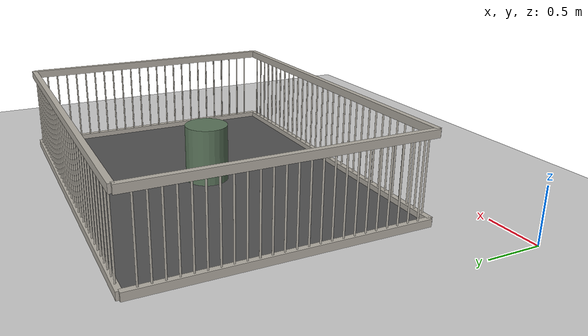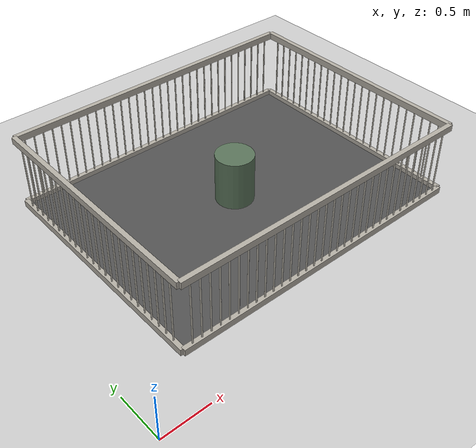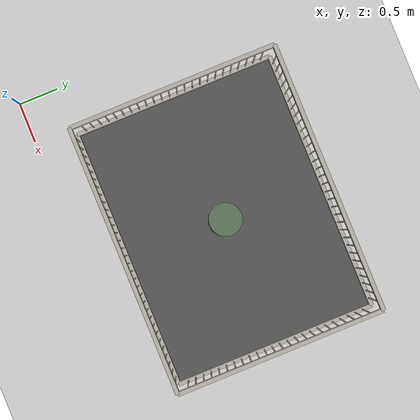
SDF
<sdf version="1.9">
 <world name="pig_pen_16units_world">
  <model name="ground_plane">
   <static>true</static>
   <link name="link">
    <collision name="collision">
     <geometry><plane><normal>0 0 1</normal><size>30 30</size></plane></geometry>
     <surface><friction><ode><mu>1.0</mu><mu2>1.0</mu2></ode></friction></surface>
    </collision>
    <visual name="visual">
     <geometry><plane><normal>0 0 1</normal><size>30 30</size></plane></geometry>
     <material>
      <ambient>0.8 0.8 0.8 1</ambient>
      <diffuse>0.8 0.8 0.8 1</diffuse>
      <specular>0.2 0.2 0.2 1</specular>
     </material>
    </visual>
   </link>
  </model>
  <model name="pen14">
   <pose>2.275 1.795 0 0 0 0</pose>
   <static>true</static>
   <link name="floor">
    <pose>0 0 0.01 0 0 0</pose>
    <collision name="collision"><geometry><box><size>3.30 2.55 0.02</size></box></geometry></collision>
    <visual name="visual">
     <geometry><box><size>3.30 2.55 0.02</size></box></geometry>
     <material>
      <ambient>0.25 0.25 0.25 1</ambient>
      <diffuse>0.32 0.32 0.32 1</diffuse>
      <specular>0.05 0.05 0.05 1</specular>
     </material>
    </visual>
   </link>
   <link name="left_wall">
    <pose>0 1.275 0.415 0 0 0</pose>
    <collision name="top_rail_col">
     <pose>0 0 0.38 0 0 0</pose>
     <geometry><box><size>3.30 0.05 0.07</size></box></geometry>
    </collision>
    <visual name="top_rail_vis">
     <pose>0 0 0.38 0 0 0</pose>
     <geometry><box><size>3.30 0.05 0.07</size></box></geometry>
     <material><ambient>0.70 0.68 0.64 1</ambient><diffuse>0.70 0.68 0.64 1</diffuse></material>
    </visual>
    <collision name="bottom_rail_col">
     <pose>0 0 -0.38 0 0 0</pose>
     <geometry><box><size>3.30 0.05 0.07</size></box></geometry>
    </collision>
    <visual name="bottom_rail_vis">
     <pose>0 0 -0.38 0 0 0</pose>
     <geometry><box><size>3.30 0.05 0.07</size></box></geometry>
     <material><ambient>0.70 0.68 0.64 1</ambient><diffuse>0.70 0.68 0.64 1</diffuse></material>
    </visual>
    <collision name="bar_01_col">
     <pose>-1.55 0 0 0 0 0</pose>
     <geometry><cylinder><radius>0.0075</radius><length>0.69</length></cylinder></geometry>
    </collision>
    <visual name="bar_01_vis">
     <pose>-1.55 0 0 0 0 0</pose>
     <geometry><cylinder><radius>0.0075</radius><length>0.69</length></cylinder></geometry>
     <material><ambient>0.70 0.68 0.64 1</ambient><diffuse>0.70 0.68 0.64 1</diffuse></material>
    </visual>
    <collision name="bar_02_col">
     <pose>-1.45 0 0 0 0 0</pose>
     <geometry><cylinder><radius>0.0075</radius><length>0.69</length></cylinder></geometry>
    </collision>
    <visual name="bar_02_vis">
     <pose>-1.45 0 0 0 0 0</pose>
     <geometry><cylinder><radius>0.0075</radius><length>0.69</length></cylinder></geometry>
     <material><ambient>0.70 0.68 0.64 1</ambient><diffuse>0.70 0.68 0.64 1</diffuse></material>
    </visual>
    <collision name="bar_03_col">
     <pose>-1.35 0 0 0 0 0</pose>
     <geometry><cylinder><radius>0.0075</radius><length>0.69</length></cylinder></geometry>
    </collision>
    <visual name="bar_03_vis">
     <pose>-1.35 0 0 0 0 0</pose>
     <geometry><cylinder><radius>0.0075</radius><length>0.69</length></cylinder></geometry>
     <material><ambient>0.70 0.68 0.64 1</ambient><diffuse>0.70 0.68 0.64 1</diffuse></material>
    </visual>
    <collision name="bar_04_col">
     <pose>-1.25 0 0 0 0 0</pose>
     <geometry><cylinder><radius>0.0075</radius><length>0.69</length></cylinder></geometry>
    </collision>
    <visual name="bar_04_vis">
     <pose>-1.25 0 0 0 0 0</pose>
     <geometry><cylinder><radius>0.0075</radius><length>0.69</length></cylinder></geometry>
     <material><ambient>0.70 0.68 0.64 1</ambient><diffuse>0.70 0.68 0.64 1</diffuse></material>
    </visual>
    <collision name="bar_05_col">
     <pose>-1.15 0 0 0 0 0</pose>
     <geometry><cylinder><radius>0.0075</radius><length>0.69</length></cylinder></geometry>
    </collision>
    <visual name="bar_05_vis">
     <pose>-1.15 0 0 0 0 0</pose>
     <geometry><cylinder><radius>0.0075</radius><length>0.69</length></cylinder></geometry>
     <material><ambient>0.70 0.68 0.64 1</ambient><diffuse>0.70 0.68 0.64 1</diffuse></material>
    </visual>
    <collision name="bar_06_col">
     <pose>-1.05 0 0 0 0 0</pose>
     <geometry><cylinder><radius>0.0075</radius><length>0.69</length></cylinder></geometry>
    </collision>
    <visual name="bar_06_vis">
     <pose>-1.05 0 0 0 0 0</pose>
     <geometry><cylinder><radius>0.0075</radius><length>0.69</length></cylinder></geometry>
     <material><ambient>0.70 0.68 0.64 1</ambient><diffuse>0.70 0.68 0.64 1</diffuse></material>
    </visual>
    <collision name="bar_07_col">
     <pose>-0.95 0 0 0 0 0</pose>
     <geometry><cylinder><radius>0.0075</radius><length>0.69</length></cylinder></geometry>
    </collision>
    <visual name="bar_07_vis">
     <pose>-0.95 0 0 0 0 0</pose>
     <geometry><cylinder><radius>0.0075</radius><length>0.69</length></cylinder></geometry>
     <material><ambient>0.70 0.68 0.64 1</ambient><diffuse>0.70 0.68 0.64 1</diffuse></material>
    </visual>
    <collision name="bar_08_col">
     <pose>-0.85 0 0 0 0 0</pose>
     <geometry><cylinder><radius>0.0075</radius><length>0.69</length></cylinder></geometry>
    </collision>
    <visual name="bar_08_vis">
     <pose>-0.85 0 0 0 0 0</pose>
     <geometry><cylinder><radius>0.0075</radius><length>0.69</length></cylinder></geometry>
     <material><ambient>0.70 0.68 0.64 1</ambient><diffuse>0.70 0.68 0.64 1</diffuse></material>
    </visual>
    <collision name="bar_09_col">
     <pose>-0.75 0 0 0 0 0</pose>
     <geometry><cylinder><radius>0.0075</radius><length>0.69</length></cylinder></geometry>
    </collision>
    <visual name="bar_09_vis">
     <pose>-0.75 0 0 0 0 0</pose>
     <geometry><cylinder><radius>0.0075</radius><length>0.69</length></cylinder></geometry>
     <material><ambient>0.70 0.68 0.64 1</ambient><diffuse>0.70 0.68 0.64 1</diffuse></material>
    </visual>
    <collision name="bar_10_col">
     <pose>-0.65 0 0 0 0 0</pose>
     <geometry><cylinder><radius>0.0075</radius><length>0.69</length></cylinder></geometry>
    </collision>
    <visual name="bar_10_vis">
     <pose>-0.65 0 0 0 0 0</pose>
     <geometry><cylinder><radius>0.0075</radius><length>0.69</length></cylinder></geometry>
     <material><ambient>0.70 0.68 0.64 1</ambient><diffuse>0.70 0.68 0.64 1</diffuse></material>
    </visual>
    <collision name="bar_11_col">
     <pose>-0.55 0 0 0 0 0</pose>
     <geometry><cylinder><radius>0.0075</radius><length>0.69</length></cylinder></geometry>
    </collision>
    <visual name="bar_11_vis">
     <pose>-0.55 0 0 0 0 0</pose>
     <geometry><cylinder><radius>0.0075</radius><length>0.69</length></cylinder></geometry>
     <material><ambient>0.70 0.68 0.64 1</ambient><diffuse>0.70 0.68 0.64 1</diffuse></material>
    </visual>
    <collision name="bar_12_col">
     <pose>-0.45 0 0 0 0 0</pose>
     <geometry><cylinder><radius>0.0075</radius><length>0.69</length></cylinder></geometry>
    </collision>
    <visual name="bar_12_vis">
     <pose>-0.45 0 0 0 0 0</pose>
     <geometry><cylinder><radius>0.0075</radius><length>0.69</length></cylinder></geometry>
     <material><ambient>0.70 0.68 0.64 1</ambient><diffuse>0.70 0.68 0.64 1</diffuse></material>
    </visual>
    <collision name="bar_13_col">
     <pose>-0.35 0 0 0 0 0</pose>
     <geometry><cylinder><radius>0.0075</radius><length>0.69</length></cylinder></geometry>
    </collision>
    <visual name="bar_13_vis">
     <pose>-0.35 0 0 0 0 0</pose>
     <geometry><cylinder><radius>0.0075</radius><length>0.69</length></cylinder></geometry>
     <material><ambient>0.70 0.68 0.64 1</ambient><diffuse>0.70 0.68 0.64 1</diffuse></material>
    </visual>
    <collision name="bar_14_col">
     <pose>-0.25 0 0 0 0 0</pose>
     <geometry><cylinder><radius>0.0075</radius><length>0.69</length></cylinder></geometry>
    </collision>
    <visual name="bar_14_vis">
     <pose>-0.25 0 0 0 0 0</pose>
     <geometry><cylinder><radius>0.0075</radius><length>0.69</length></cylinder></geometry>
     <material><ambient>0.70 0.68 0.64 1</ambient><diffuse>0.70 0.68 0.64 1</diffuse></material>
    </visual>
    <collision name="bar_15_col">
     <pose>-0.15 0 0 0 0 0</pose>
     <geometry><cylinder><radius>0.0075</radius><length>0.69</length></cylinder></geometry>
    </collision>
    <visual name="bar_15_vis">
     <pose>-0.15 0 0 0 0 0</pose>
     <geometry><cylinder><radius>0.0075</radius><length>0.69</length></cylinder></geometry>
     <material><ambient>0.70 0.68 0.64 1</ambient><diffuse>0.70 0.68 0.64 1</diffuse></material>
    </visual>
    <collision name="bar_16_col">
     <pose>-0.05 0 0 0 0 0</pose>
     <geometry><cylinder><radius>0.0075</radius><length>0.69</length></cylinder></geometry>
    </collision>
    <visual name="bar_16_vis">
     <pose>-0.05 0 0 0 0 0</pose>
     <geometry><cylinder><radius>0.0075</radius><length>0.69</length></cylinder></geometry>
     <material><ambient>0.70 0.68 0.64 1</ambient><diffuse>0.70 0.68 0.64 1</diffuse></material>
    </visual>
    <collision name="bar_17_col">
     <pose>0.05 0 0 0 0 0</pose>
     <geometry><cylinder><radius>0.0075</radius><length>0.69</length></cylinder></geometry>
    </collision>
    <visual name="bar_17_vis">
     <pose>0.05 0 0 0 0 0</pose>
     <geometry><cylinder><radius>0.0075</radius><length>0.69</length></cylinder></geometry>
     <material><ambient>0.70 0.68 0.64 1</ambient><diffuse>0.70 0.68 0.64 1</diffuse></material>
    </visual>
    <collision name="bar_18_col">
     <pose>0.15 0 0 0 0 0</pose>
     <geometry><cylinder><radius>0.0075</radius><length>0.69</length></cylinder></geometry>
    </collision>
    <visual name="bar_18_vis">
     <pose>0.15 0 0 0 0 0</pose>
     <geometry><cylinder><radius>0.0075</radius><length>0.69</length></cylinder></geometry>
     <material><ambient>0.70 0.68 0.64 1</ambient><diffuse>0.70 0.68 0.64 1</diffuse></material>
    </visual>
    <collision name="bar_19_col">
     <pose>0.25 0 0 0 0 0</pose>
     <geometry><cylinder><radius>0.0075</radius><length>0.69</length></cylinder></geometry>
    </collision>
    <visual name="bar_19_vis">
     <pose>0.25 0 0 0 0 0</pose>
     <geometry><cylinder><radius>0.0075</radius><length>0.69</length></cylinder></geometry>
     <material><ambient>0.70 0.68 0.64 1</ambient><diffuse>0.70 0.68 0.64 1</diffuse></material>
    </visual>
    <collision name="bar_20_col">
     <pose>0.35 0 0 0 0 0</pose>
     <geometry><cylinder><radius>0.0075</radius><length>0.69</length></cylinder></geometry>
    </collision>
    <visual name="bar_20_vis">
     <pose>0.35 0 0 0 0 0</pose>
     <geometry><cylinder><radius>0.0075</radius><length>0.69</length></cylinder></geometry>
     <material><ambient>0.70 0.68 0.64 1</ambient><diffuse>0.70 0.68 0.64 1</diffuse></material>
    </visual>
    <collision name="bar_21_col">
     <pose>0.45 0 0 0 0 0</pose>
     <geometry><cylinder><radius>0.0075</radius><length>0.69</length></cylinder></geometry>
    </collision>
    <visual name="bar_21_vis">
     <pose>0.45 0 0 0 0 0</pose>
     <geometry><cylinder><radius>0.0075</radius><length>0.69</length></cylinder></geometry>
     <material><ambient>0.70 0.68 0.64 1</ambient><diffuse>0.70 0.68 0.64 1</diffuse></material>
    </visual>
    <collision name="bar_22_col">
     <pose>0.55 0 0 0 0 0</pose>
     <geometry><cylinder><radius>0.0075</radius><length>0.69</length></cylinder></geometry>
    </collision>
    <visual name="bar_22_vis">
     <pose>0.55 0 0 0 0 0</pose>
     <geometry><cylinder><radius>0.0075</radius><length>0.69</length></cylinder></geometry>
     <material><ambient>0.70 0.68 0.64 1</ambient><diffuse>0.70 0.68 0.64 1</diffuse></material>
    </visual>
    <collision name="bar_23_col">
     <pose>0.65 0 0 0 0 0</pose>
     <geometry><cylinder><radius>0.0075</radius><length>0.69</length></cylinder></geometry>
    </collision>
    <visual name="bar_23_vis">
     <pose>0.65 0 0 0 0 0</pose>
     <geometry><cylinder><radius>0.0075</radius><length>0.69</length></cylinder></geometry>
     <material><ambient>0.70 0.68 0.64 1</ambient><diffuse>0.70 0.68 0.64 1</diffuse></material>
    </visual>
    <collision name="bar_24_col">
     <pose>0.75 0 0 0 0 0</pose>
     <geometry><cylinder><radius>0.0075</radius><length>0.69</length></cylinder></geometry>
    </collision>
    <visual name="bar_24_vis">
     <pose>0.75 0 0 0 0 0</pose>
     <geometry><cylinder><radius>0.0075</radius><length>0.69</length></cylinder></geometry>
     <material><ambient>0.70 0.68 0.64 1</ambient><diffuse>0.70 0.68 0.64 1</diffuse></material>
    </visual>
    <collision name="bar_25_col">
     <pose>0.85 0 0 0 0 0</pose>
     <geometry><cylinder><radius>0.0075</radius><length>0.69</length></cylinder></geometry>
    </collision>
    <visual name="bar_25_vis">
     <pose>0.85 0 0 0 0 0</pose>
     <geometry><cylinder><radius>0.0075</radius><length>0.69</length></cylinder></geometry>
     <material><ambient>0.70 0.68 0.64 1</ambient><diffuse>0.70 0.68 0.64 1</diffuse></material>
    </visual>
    <collision name="bar_26_col">
     <pose>0.95 0 0 0 0 0</pose>
     <geometry><cylinder><radius>0.0075</radius><length>0.69</length></cylinder></geometry>
    </collision>
    <visual name="bar_26_vis">
     <pose>0.95 0 0 0 0 0</pose>
     <geometry><cylinder><radius>0.0075</radius><length>0.69</length></cylinder></geometry>
     <material><ambient>0.70 0.68 0.64 1</ambient><diffuse>0.70 0.68 0.64 1</diffuse></material>
    </visual>
    <collision name="bar_27_col">
     <pose>1.05 0 0 0 0 0</pose>
     <geometry><cylinder><radius>0.0075</radius><length>0.69</length></cylinder></geometry>
    </collision>
    <visual name="bar_27_vis">
     <pose>1.05 0 0 0 0 0</pose>
     <geometry><cylinder><radius>0.0075</radius><length>0.69</length></cylinder></geometry>
     <material><ambient>0.70 0.68 0.64 1</ambient><diffuse>0.70 0.68 0.64 1</diffuse></material>
    </visual>
    <collision name="bar_28_col">
     <pose>1.15 0 0 0 0 0</pose>
     <geometry><cylinder><radius>0.0075</radius><length>0.69</length></cylinder></geometry>
    </collision>
    <visual name="bar_28_vis">
     <pose>1.15 0 0 0 0 0</pose>
     <geometry><cylinder><radius>0.0075</radius><length>0.69</length></cylinder></geometry>
     <material><ambient>0.70 0.68 0.64 1</ambient><diffuse>0.70 0.68 0.64 1</diffuse></material>
    </visual>
    <collision name="bar_29_col">
     <pose>1.25 0 0 0 0 0</pose>
     <geometry><cylinder><radius>0.0075</radius><length>0.69</length></cylinder></geometry>
    </collision>
    <visual name="bar_29_vis">
     <pose>1.25 0 0 0 0 0</pose>
     <geometry><cylinder><radius>0.0075</radius><length>0.69</length></cylinder></geometry>
     <material><ambient>0.70 0.68 0.64 1</ambient><diffuse>0.70 0.68 0.64 1</diffuse></material>
    </visual>
    <collision name="bar_30_col">
     <pose>1.35 0 0 0 0 0</pose>
     <geometry><cylinder><radius>0.0075</radius><length>0.69</length></cylinder></geometry>
    </collision>
    <visual name="bar_30_vis">
     <pose>1.35 0 0 0 0 0</pose>
     <geometry><cylinder><radius>0.0075</radius><length>0.69</length></cylinder></geometry>
     <material><ambient>0.70 0.68 0.64 1</ambient><diffuse>0.70 0.68 0.64 1</diffuse></material>
    </visual>
    <collision name="bar_31_col">
     <pose>1.45 0 0 0 0 0</pose>
     <geometry><cylinder><radius>0.0075</radius><length>0.69</length></cylinder></geometry>
    </collision>
    <visual name="bar_31_vis">
     <pose>1.45 0 0 0 0 0</pose>
     <geometry><cylinder><radius>0.0075</radius><length>0.69</length></cylinder></geometry>
     <material><ambient>0.70 0.68 0.64 1</ambient><diffuse>0.70 0.68 0.64 1</diffuse></material>
    </visual>
    <collision name="bar_32_col">
     <pose>1.55 0 0 0 0 0</pose>
     <geometry><cylinder><radius>0.0075</radius><length>0.69</length></cylinder></geometry>
    </collision>
    <visual name="bar_32_vis">
     <pose>1.55 0 0 0 0 0</pose>
     <geometry><cylinder><radius>0.0075</radius><length>0.69</length></cylinder></geometry>
     <material><ambient>0.70 0.68 0.64 1</ambient><diffuse>0.70 0.68 0.64 1</diffuse></material>
    </visual>
   </link>
   <link name="right_wall">
    <pose>0 -1.275 0.415 0 0 0</pose>
    <collision name="top_rail_col">
     <pose>0 0 0.38 0 0 0</pose>
     <geometry><box><size>3.30 0.05 0.07</size></box></geometry>
    </collision>
    <visual name="top_rail_vis">
     <pose>0 0 0.38 0 0 0</pose>
     <geometry><box><size>3.30 0.05 0.07</size></box></geometry>
     <material><ambient>0.70 0.68 0.64 1</ambient><diffuse>0.70 0.68 0.64 1</diffuse></material>
    </visual>
    <collision name="bottom_rail_col">
     <pose>0 0 -0.38 0 0 0</pose>
     <geometry><box><size>3.30 0.05 0.07</size></box></geometry>
    </collision>
    <visual name="bottom_rail_vis">
     <pose>0 0 -0.38 0 0 0</pose>
     <geometry><box><size>3.30 0.05 0.07</size></box></geometry>
     <material><ambient>0.70 0.68 0.64 1</ambient><diffuse>0.70 0.68 0.64 1</diffuse></material>
    </visual>
    <collision name="bar_01_col">
     <pose>-1.55 0 0 0 0 0</pose>
     <geometry><cylinder><radius>0.0075</radius><length>0.69</length></cylinder></geometry>
    </collision>
    <visual name="bar_01_vis">
     <pose>-1.55 0 0 0 0 0</pose>
     <geometry><cylinder><radius>0.0075</radius><length>0.69</length></cylinder></geometry>
     <material><ambient>0.70 0.68 0.64 1</ambient><diffuse>0.70 0.68 0.64 1</diffuse></material>
    </visual>
    <collision name="bar_02_col">
     <pose>-1.45 0 0 0 0 0</pose>
     <geometry><cylinder><radius>0.0075</radius><length>0.69</length></cylinder></geometry>
    </collision>
    <visual name="bar_02_vis">
     <pose>-1.45 0 0 0 0 0</pose>
     <geometry><cylinder><radius>0.0075</radius><length>0.69</length></cylinder></geometry>
     <material><ambient>0.70 0.68 0.64 1</ambient><diffuse>0.70 0.68 0.64 1</diffuse></material>
    </visual>
    <collision name="bar_03_col">
     <pose>-1.35 0 0 0 0 0</pose>
     <geometry><cylinder><radius>0.0075</radius><length>0.69</length></cylinder></geometry>
    </collision>
    <visual name="bar_03_vis">
     <pose>-1.35 0 0 0 0 0</pose>
     <geometry><cylinder><radius>0.0075</radius><length>0.69</length></cylinder></geometry>
     <material><ambient>0.70 0.68 0.64 1</ambient><diffuse>0.70 0.68 0.64 1</diffuse></material>
    </visual>
    <collision name="bar_04_col">
     <pose>-1.25 0 0 0 0 0</pose>
     <geometry><cylinder><radius>0.0075</radius><length>0.69</length></cylinder></geometry>
    </collision>
    <visual name="bar_04_vis">
     <pose>-1.25 0 0 0 0 0</pose>
     <geometry><cylinder><radius>0.0075</radius><length>0.69</length></cylinder></geometry>
     <material><ambient>0.70 0.68 0.64 1</ambient><diffuse>0.70 0.68 0.64 1</diffuse></material>
    </visual>
    <collision name="bar_05_col">
     <pose>-1.15 0 0 0 0 0</pose>
     <geometry><cylinder><radius>0.0075</radius><length>0.69</length></cylinder></geometry>
    </collision>
    <visual name="bar_05_vis">
     <pose>-1.15 0 0 0 0 0</pose>
     <geometry><cylinder><radius>0.0075</radius><length>0.69</length></cylinder></geometry>
     <material><ambient>0.70 0.68 0.64 1</ambient><diffuse>0.70 0.68 0.64 1</diffuse></material>
    </visual>
    <collision name="bar_06_col">
     <pose>-1.05 0 0 0 0 0</pose>
     <geometry><cylinder><radius>0.0075</radius><length>0.69</length></cylinder></geometry>
    </collision>
    <visual name="bar_06_vis">
     <pose>-1.05 0 0 0 0 0</pose>
     <geometry><cylinder><radius>0.0075</radius><length>0.69</length></cylinder></geometry>
     <material><ambient>0.70 0.68 0.64 1</ambient><diffuse>0.70 0.68 0.64 1</diffuse></material>
    </visual>
    <collision name="bar_07_col">
     <pose>-0.95 0 0 0 0 0</pose>
     <geometry><cylinder><radius>0.0075</radius><length>0.69</length></cylinder></geometry>
    </collision>
    <visual name="bar_07_vis">
     <pose>-0.95 0 0 0 0 0</pose>
     <geometry><cylinder><radius>0.0075</radius><length>0.69</length></cylinder></geometry>
     <material><ambient>0.70 0.68 0.64 1</ambient><diffuse>0.70 0.68 0.64 1</diffuse></material>
    </visual>
    <collision name="bar_08_col">
     <pose>-0.85 0 0 0 0 0</pose>
     <geometry><cylinder><radius>0.0075</radius><length>0.69</length></cylinder></geometry>
    </collision>
    <visual name="bar_08_vis">
     <pose>-0.85 0 0 0 0 0</pose>
     <geometry><cylinder><radius>0.0075</radius><length>0.69</length></cylinder></geometry>
     <material><ambient>0.70 0.68 0.64 1</ambient><diffuse>0.70 0.68 0.64 1</diffuse></material>
    </visual>
    <collision name="bar_09_col">
     <pose>-0.75 0 0 0 0 0</pose>
     <geometry><cylinder><radius>0.0075</radius><length>0.69</length></cylinder></geometry>
    </collision>
    <visual name="bar_09_vis">
     <pose>-0.75 0 0 0 0 0</pose>
     <geometry><cylinder><radius>0.0075</radius><length>0.69</length></cylinder></geometry>
     <material><ambient>0.70 0.68 0.64 1</ambient><diffuse>0.70 0.68 0.64 1</diffuse></material>
    </visual>
    <collision name="bar_10_col">
     <pose>-0.65 0 0 0 0 0</pose>
     <geometry><cylinder><radius>0.0075</radius><length>0.69</length></cylinder></geometry>
    </collision>
    <visual name="bar_10_vis">
     <pose>-0.65 0 0 0 0 0</pose>
     <geometry><cylinder><radius>0.0075</radius><length>0.69</length></cylinder></geometry>
     <material><ambient>0.70 0.68 0.64 1</ambient><diffuse>0.70 0.68 0.64 1</diffuse></material>
    </visual>
    <collision name="bar_11_col">
     <pose>-0.55 0 0 0 0 0</pose>
     <geometry><cylinder><radius>0.0075</radius><length>0.69</length></cylinder></geometry>
    </collision>
    <visual name="bar_11_vis">
     <pose>-0.55 0 0 0 0 0</pose>
     <geometry><cylinder><radius>0.0075</radius><length>0.69</length></cylinder></geometry>
     <material><ambient>0.70 0.68 0.64 1</ambient><diffuse>0.70 0.68 0.64 1</diffuse></material>
    </visual>
    <collision name="bar_12_col">
     <pose>-0.45 0 0 0 0 0</pose>
     <geometry><cylinder><radius>0.0075</radius><length>0.69</length></cylinder></geometry>
    </collision>
    <visual name="bar_12_vis">
     <pose>-0.45 0 0 0 0 0</pose>
     <geometry><cylinder><radius>0.0075</radius><length>0.69</length></cylinder></geometry>
     <material><ambient>0.70 0.68 0.64 1</ambient><diffuse>0.70 0.68 0.64 1</diffuse></material>
    </visual>
    <collision name="bar_13_col">
     <pose>-0.35 0 0 0 0 0</pose>
     <geometry><cylinder><radius>0.0075</radius><length>0.69</length></cylinder></geometry>
    </collision>
    <visual name="bar_13_vis">
     <pose>-0.35 0 0 0 0 0</pose>
     <geometry><cylinder><radius>0.0075</radius><length>0.69</length></cylinder></geometry>
     <material><ambient>0.70 0.68 0.64 1</ambient><diffuse>0.70 0.68 0.64 1</diffuse></material>
    </visual>
    <collision name="bar_14_col">
     <pose>-0.25 0 0 0 0 0</pose>
     <geometry><cylinder><radius>0.0075</radius><length>0.69</length></cylinder></geometry>
    </collision>
    <visual name="bar_14_vis">
     <pose>-0.25 0 0 0 0 0</pose>
     <geometry><cylinder><radius>0.0075</radius><length>0.69</length></cylinder></geometry>
     <material><ambient>0.70 0.68 0.64 1</ambient><diffuse>0.70 0.68 0.64 1</diffuse></material>
    </visual>
    <collision name="bar_15_col">
     <pose>-0.15 0 0 0 0 0</pose>
     <geometry><cylinder><radius>0.0075</radius><length>0.69</length></cylinder></geometry>
    </collision>
    <visual name="bar_15_vis">
     <pose>-0.15 0 0 0 0 0</pose>
     <geometry><cylinder><radius>0.0075</radius><length>0.69</length></cylinder></geometry>
     <material><ambient>0.70 0.68 0.64 1</ambient><diffuse>0.70 0.68 0.64 1</diffuse></material>
    </visual>
    <collision name="bar_16_col">
     <pose>-0.05 0 0 0 0 0</pose>
     <geometry><cylinder><radius>0.0075</radius><length>0.69</length></cylinder></geometry>
    </collision>
    <visual name="bar_16_vis">
     <pose>-0.05 0 0 0 0 0</pose>
     <geometry><cylinder><radius>0.0075</radius><length>0.69</length></cylinder></geometry>
     <material><ambient>0.70 0.68 0.64 1</ambient><diffuse>0.70 0.68 0.64 1</diffuse></material>
    </visual>
    <collision name="bar_17_col">
     <pose>0.05 0 0 0 0 0</pose>
     <geometry><cylinder><radius>0.0075</radius><length>0.69</length></cylinder></geometry>
    </collision>
    <visual name="bar_17_vis">
     <pose>0.05 0 0 0 0 0</pose>
     <geometry><cylinder><radius>0.0075</radius><length>0.69</length></cylinder></geometry>
     <material><ambient>0.70 0.68 0.64 1</ambient><diffuse>0.70 0.68 0.64 1</diffuse></material>
    </visual>
    <collision name="bar_18_col">
     <pose>0.15 0 0 0 0 0</pose>
     <geometry><cylinder><radius>0.0075</radius><length>0.69</length></cylinder></geometry>
    </collision>
    <visual name="bar_18_vis">
     <pose>0.15 0 0 0 0 0</pose>
     <geometry><cylinder><radius>0.0075</radius><length>0.69</length></cylinder></geometry>
     <material><ambient>0.70 0.68 0.64 1</ambient><diffuse>0.70 0.68 0.64 1</diffuse></material>
    </visual>
    <collision name="bar_19_col">
     <pose>0.25 0 0 0 0 0</pose>
     <geometry><cylinder><radius>0.0075</radius><length>0.69</length></cylinder></geometry>
    </collision>
    <visual name="bar_19_vis">
     <pose>0.25 0 0 0 0 0</pose>
     <geometry><cylinder><radius>0.0075</radius><length>0.69</length></cylinder></geometry>
     <material><ambient>0.70 0.68 0.64 1</ambient><diffuse>0.70 0.68 0.64 1</diffuse></material>
    </visual>
    <collision name="bar_20_col">
     <pose>0.35 0 0 0 0 0</pose>
     <geometry><cylinder><radius>0.0075</radius><length>0.69</length></cylinder></geometry>
    </collision>
    <visual name="bar_20_vis">
     <pose>0.35 0 0 0 0 0</pose>
     <geometry><cylinder><radius>0.0075</radius><length>0.69</length></cylinder></geometry>
     <material><ambient>0.70 0.68 0.64 1</ambient><diffuse>0.70 0.68 0.64 1</diffuse></material>
    </visual>
    <collision name="bar_21_col">
     <pose>0.45 0 0 0 0 0</pose>
     <geometry><cylinder><radius>0.0075</radius><length>0.69</length></cylinder></geometry>
    </collision>
    <visual name="bar_21_vis">
     <pose>0.45 0 0 0 0 0</pose>
     <geometry><cylinder><radius>0.0075</radius><length>0.69</length></cylinder></geometry>
     <material><ambient>0.70 0.68 0.64 1</ambient><diffuse>0.70 0.68 0.64 1</diffuse></material>
    </visual>
    <collision name="bar_22_col">
     <pose>0.55 0 0 0 0 0</pose>
     <geometry><cylinder><radius>0.0075</radius><length>0.69</length></cylinder></geometry>
    </collision>
    <visual name="bar_22_vis">
     <pose>0.55 0 0 0 0 0</pose>
     <geometry><cylinder><radius>0.0075</radius><length>0.69</length></cylinder></geometry>
     <material><ambient>0.70 0.68 0.64 1</ambient><diffuse>0.70 0.68 0.64 1</diffuse></material>
    </visual>
    <collision name="bar_23_col">
     <pose>0.65 0 0 0 0 0</pose>
     <geometry><cylinder><radius>0.0075</radius><length>0.69</length></cylinder></geometry>
    </collision>
    <visual name="bar_23_vis">
     <pose>0.65 0 0 0 0 0</pose>
     <geometry><cylinder><radius>0.0075</radius><length>0.69</length></cylinder></geometry>
     <material><ambient>0.70 0.68 0.64 1</ambient><diffuse>0.70 0.68 0.64 1</diffuse></material>
    </visual>
    <collision name="bar_24_col">
     <pose>0.75 0 0 0 0 0</pose>
     <geometry><cylinder><radius>0.0075</radius><length>0.69</length></cylinder></geometry>
    </collision>
    <visual name="bar_24_vis">
     <pose>0.75 0 0 0 0 0</pose>
     <geometry><cylinder><radius>0.0075</radius><length>0.69</length></cylinder></geometry>
     <material><ambient>0.70 0.68 0.64 1</ambient><diffuse>0.70 0.68 0.64 1</diffuse></material>
    </visual>
    <collision name="bar_25_col">
     <pose>0.85 0 0 0 0 0</pose>
     <geometry><cylinder><radius>0.0075</radius><length>0.69</length></cylinder></geometry>
    </collision>
    <visual name="bar_25_vis">
     <pose>0.85 0 0 0 0 0</pose>
     <geometry><cylinder><radius>0.0075</radius><length>0.69</length></cylinder></geometry>
     <material><ambient>0.70 0.68 0.64 1</ambient><diffuse>0.70 0.68 0.64 1</diffuse></material>
    </visual>
    <collision name="bar_26_col">
     <pose>0.95 0 0 0 0 0</pose>
     <geometry><cylinder><radius>0.0075</radius><length>0.69</length></cylinder></geometry>
    </collision>
    <visual name="bar_26_vis">
     <pose>0.95 0 0 0 0 0</pose>
     <geometry><cylinder><radius>0.0075</radius><length>0.69</length></cylinder></geometry>
     <material><ambient>0.70 0.68 0.64 1</ambient><diffuse>0.70 0.68 0.64 1</diffuse></material>
    </visual>
    <collision name="bar_27_col">
     <pose>1.05 0 0 0 0 0</pose>
     <geometry><cylinder><radius>0.0075</radius><length>0.69</length></cylinder></geometry>
    </collision>
    <visual name="bar_27_vis">
     <pose>1.05 0 0 0 0 0</pose>
     <geometry><cylinder><radius>0.0075</radius><length>0.69</length></cylinder></geometry>
     <material><ambient>0.70 0.68 0.64 1</ambient><diffuse>0.70 0.68 0.64 1</diffuse></material>
    </visual>
    <collision name="bar_28_col">
     <pose>1.15 0 0 0 0 0</pose>
     <geometry><cylinder><radius>0.0075</radius><length>0.69</length></cylinder></geometry>
    </collision>
    <visual name="bar_28_vis">
     <pose>1.15 0 0 0 0 0</pose>
     <geometry><cylinder><radius>0.0075</radius><length>0.69</length></cylinder></geometry>
     <material><ambient>0.70 0.68 0.64 1</ambient><diffuse>0.70 0.68 0.64 1</diffuse></material>
    </visual>
    <collision name="bar_29_col">
     <pose>1.25 0 0 0 0 0</pose>
     <geometry><cylinder><radius>0.0075</radius><length>0.69</length></cylinder></geometry>
    </collision>
    <visual name="bar_29_vis">
     <pose>1.25 0 0 0 0 0</pose>
     <geometry><cylinder><radius>0.0075</radius><length>0.69</length></cylinder></geometry>
     <material><ambient>0.70 0.68 0.64 1</ambient><diffuse>0.70 0.68 0.64 1</diffuse></material>
    </visual>
    <collision name="bar_30_col">
     <pose>1.35 0 0 0 0 0</pose>
     <geometry><cylinder><radius>0.0075</radius><length>0.69</length></cylinder></geometry>
    </collision>
    <visual name="bar_30_vis">
     <pose>1.35 0 0 0 0 0</pose>
     <geometry><cylinder><radius>0.0075</radius><length>0.69</length></cylinder></geometry>
     <material><ambient>0.70 0.68 0.64 1</ambient><diffuse>0.70 0.68 0.64 1</diffuse></material>
    </visual>
    <collision name="bar_31_col">
     <pose>1.45 0 0 0 0 0</pose>
     <geometry><cylinder><radius>0.0075</radius><length>0.69</length></cylinder></geometry>
    </collision>
    <visual name="bar_31_vis">
     <pose>1.45 0 0 0 0 0</pose>
     <geometry><cylinder><radius>0.0075</radius><length>0.69</length></cylinder></geometry>
     <material><ambient>0.70 0.68 0.64 1</ambient><diffuse>0.70 0.68 0.64 1</diffuse></material>
    </visual>
    <collision name="bar_32_col">
     <pose>1.55 0 0 0 0 0</pose>
     <geometry><cylinder><radius>0.0075</radius><length>0.69</length></cylinder></geometry>
    </collision>
    <visual name="bar_32_vis">
     <pose>1.55 0 0 0 0 0</pose>
     <geometry><cylinder><radius>0.0075</radius><length>0.69</length></cylinder></geometry>
     <material><ambient>0.70 0.68 0.64 1</ambient><diffuse>0.70 0.68 0.64 1</diffuse></material>
    </visual>
   </link>
   <link name="back_wall">
    <pose>1.65 0 0.415 0 0 0</pose>
    <collision name="top_rail_col">
     <pose>0 0 0.38 0 0 0</pose>
     <geometry><box><size>0.05 2.55 0.07</size></box></geometry>
    </collision>
    <visual name="top_rail_vis">
     <pose>0 0 0.38 0 0 0</pose>
     <geometry><box><size>0.05 2.55 0.07</size></box></geometry>
     <material><ambient>0.70 0.68 0.64 1</ambient><diffuse>0.70 0.68 0.64 1</diffuse></material>
    </visual>
    <collision name="bottom_rail_col">
     <pose>0 0 -0.38 0 0 0</pose>
     <geometry><box><size>0.05 2.55 0.07</size></box></geometry>
    </collision>
    <visual name="bottom_rail_vis">
     <pose>0 0 -0.38 0 0 0</pose>
     <geometry><box><size>0.05 2.55 0.07</size></box></geometry>
     <material><ambient>0.70 0.68 0.64 1</ambient><diffuse>0.70 0.68 0.64 1</diffuse></material>
    </visual>
    <collision name="bar_01_col">
     <pose>0 -1.15 0 0 0 0</pose>
     <geometry><cylinder><radius>0.0075</radius><length>0.69</length></cylinder></geometry>
    </collision>
    <visual name="bar_01_vis">
     <pose>0 -1.15 0 0 0 0</pose>
     <geometry><cylinder><radius>0.0075</radius><length>0.69</length></cylinder></geometry>
     <material><ambient>0.70 0.68 0.64 1</ambient><diffuse>0.70 0.68 0.64 1</diffuse></material>
    </visual>
    <collision name="bar_02_col">
     <pose>0 -1.05 0 0 0 0</pose>
     <geometry><cylinder><radius>0.0075</radius><length>0.69</length></cylinder></geometry>
    </collision>
    <visual name="bar_02_vis">
     <pose>0 -1.05 0 0 0 0</pose>
     <geometry><cylinder><radius>0.0075</radius><length>0.69</length></cylinder></geometry>
     <material><ambient>0.70 0.68 0.64 1</ambient><diffuse>0.70 0.68 0.64 1</diffuse></material>
    </visual>
    <collision name="bar_03_col">
     <pose>0 -0.95 0 0 0 0</pose>
     <geometry><cylinder><radius>0.0075</radius><length>0.69</length></cylinder></geometry>
    </collision>
    <visual name="bar_03_vis">
     <pose>0 -0.95 0 0 0 0</pose>
     <geometry><cylinder><radius>0.0075</radius><length>0.69</length></cylinder></geometry>
     <material><ambient>0.70 0.68 0.64 1</ambient><diffuse>0.70 0.68 0.64 1</diffuse></material>
    </visual>
    <collision name="bar_04_col">
     <pose>0 -0.85 0 0 0 0</pose>
     <geometry><cylinder><radius>0.0075</radius><length>0.69</length></cylinder></geometry>
    </collision>
    <visual name="bar_04_vis">
     <pose>0 -0.85 0 0 0 0</pose>
     <geometry><cylinder><radius>0.0075</radius><length>0.69</length></cylinder></geometry>
     <material><ambient>0.70 0.68 0.64 1</ambient><diffuse>0.70 0.68 0.64 1</diffuse></material>
    </visual>
    <collision name="bar_05_col">
     <pose>0 -0.75 0 0 0 0</pose>
     <geometry><cylinder><radius>0.0075</radius><length>0.69</length></cylinder></geometry>
    </collision>
    <visual name="bar_05_vis">
     <pose>0 -0.75 0 0 0 0</pose>
     <geometry><cylinder><radius>0.0075</radius><length>0.69</length></cylinder></geometry>
     <material><ambient>0.70 0.68 0.64 1</ambient><diffuse>0.70 0.68 0.64 1</diffuse></material>
    </visual>
    <collision name="bar_06_col">
     <pose>0 -0.65 0 0 0 0</pose>
     <geometry><cylinder><radius>0.0075</radius><length>0.69</length></cylinder></geometry>
    </collision>
    <visual name="bar_06_vis">
     <pose>0 -0.65 0 0 0 0</pose>
     <geometry><cylinder><radius>0.0075</radius><length>0.69</length></cylinder></geometry>
     <material><ambient>0.70 0.68 0.64 1</ambient><diffuse>0.70 0.68 0.64 1</diffuse></material>
    </visual>
    <collision name="bar_07_col">
     <pose>0 -0.55 0 0 0 0</pose>
     <geometry><cylinder><radius>0.0075</radius><length>0.69</length></cylinder></geometry>
    </collision>
    <visual name="bar_07_vis">
     <pose>0 -0.55 0 0 0 0</pose>
     <geometry><cylinder><radius>0.0075</radius><length>0.69</length></cylinder></geometry>
     <material><ambient>0.70 0.68 0.64 1</ambient><diffuse>0.70 0.68 0.64 1</diffuse></material>
    </visual>
    <collision name="bar_08_col">
     <pose>0 -0.45 0 0 0 0</pose>
     <geometry><cylinder><radius>0.0075</radius><length>0.69</length></cylinder></geometry>
    </collision>
    <visual name="bar_08_vis">
     <pose>0 -0.45 0 0 0 0</pose>
     <geometry><cylinder><radius>0.0075</radius><length>0.69</length></cylinder></geometry>
     <material><ambient>0.70 0.68 0.64 1</ambient><diffuse>0.70 0.68 0.64 1</diffuse></material>
    </visual>
    <collision name="bar_09_col">
     <pose>0 -0.35 0 0 0 0</pose>
     <geometry><cylinder><radius>0.0075</radius><length>0.69</length></cylinder></geometry>
    </collision>
    <visual name="bar_09_vis">
     <pose>0 -0.35 0 0 0 0</pose>
     <geometry><cylinder><radius>0.0075</radius><length>0.69</length></cylinder></geometry>
     <material><ambient>0.70 0.68 0.64 1</ambient><diffuse>0.70 0.68 0.64 1</diffuse></material>
    </visual>
    <collision name="bar_10_col">
     <pose>0 -0.25 0 0 0 0</pose>
     <geometry><cylinder><radius>0.0075</radius><length>0.69</length></cylinder></geometry>
    </collision>
    <visual name="bar_10_vis">
     <pose>0 -0.25 0 0 0 0</pose>
     <geometry><cylinder><radius>0.0075</radius><length>0.69</length></cylinder></geometry>
     <material><ambient>0.70 0.68 0.64 1</ambient><diffuse>0.70 0.68 0.64 1</diffuse></material>
    </visual>
    <collision name="bar_11_col">
     <pose>0 -0.15 0 0 0 0</pose>
     <geometry><cylinder><radius>0.0075</radius><length>0.69</length></cylinder></geometry>
    </collision>
    <visual name="bar_11_vis">
     <pose>0 -0.15 0 0 0 0</pose>
     <geometry><cylinder><radius>0.0075</radius><length>0.69</length></cylinder></geometry>
     <material><ambient>0.70 0.68 0.64 1</ambient><diffuse>0.70 0.68 0.64 1</diffuse></material>
    </visual>
    <collision name="bar_12_col">
     <pose>0 -0.05 0 0 0 0</pose>
     <geometry><cylinder><radius>0.0075</radius><length>0.69</length></cylinder></geometry>
    </collision>
    <visual name="bar_12_vis">
     <pose>0 -0.05 0 0 0 0</pose>
     <geometry><cylinder><radius>0.0075</radius><length>0.69</length></cylinder></geometry>
     <material><ambient>0.70 0.68 0.64 1</ambient><diffuse>0.70 0.68 0.64 1</diffuse></material>
    </visual>
    <collision name="bar_13_col">
     <pose>0 0.05 0 0 0 0</pose>
     <geometry><cylinder><radius>0.0075</radius><length>0.69</length></cylinder></geometry>
    </collision>
    <visual name="bar_13_vis">
     <pose>0 0.05 0 0 0 0</pose>
     <geometry><cylinder><radius>0.0075</radius><length>0.69</length></cylinder></geometry>
     <material><ambient>0.70 0.68 0.64 1</ambient><diffuse>0.70 0.68 0.64 1</diffuse></material>
    </visual>
    <collision name="bar_14_col">
     <pose>0 0.15 0 0 0 0</pose>
     <geometry><cylinder><radius>0.0075</radius><length>0.69</length></cylinder></geometry>
    </collision>
    <visual name="bar_14_vis">
     <pose>0 0.15 0 0 0 0</pose>
     <geometry><cylinder><radius>0.0075</radius><length>0.69</length></cylinder></geometry>
     <material><ambient>0.70 0.68 0.64 1</ambient><diffuse>0.70 0.68 0.64 1</diffuse></material>
    </visual>
    <collision name="bar_15_col">
     <pose>0 0.25 0 0 0 0</pose>
     <geometry><cylinder><radius>0.0075</radius><length>0.69</length></cylinder></geometry>
    </collision>
    <visual name="bar_15_vis">
     <pose>0 0.25 0 0 0 0</pose>
     <geometry><cylinder><radius>0.0075</radius><length>0.69</length></cylinder></geometry>
     <material><ambient>0.70 0.68 0.64 1</ambient><diffuse>0.70 0.68 0.64 1</diffuse></material>
    </visual>
    <collision name="bar_16_col">
     <pose>0 0.35 0 0 0 0</pose>
     <geometry><cylinder><radius>0.0075</radius><length>0.69</length></cylinder></geometry>
    </collision>
    <visual name="bar_16_vis">
     <pose>0 0.35 0 0 0 0</pose>
     <geometry><cylinder><radius>0.0075</radius><length>0.69</length></cylinder></geometry>
     <material><ambient>0.70 0.68 0.64 1</ambient><diffuse>0.70 0.68 0.64 1</diffuse></material>
    </visual>
    <collision name="bar_17_col">
     <pose>0 0.45 0 0 0 0</pose>
     <geometry><cylinder><radius>0.0075</radius><length>0.69</length></cylinder></geometry>
    </collision>
    <visual name="bar_17_vis">
     <pose>0 0.45 0 0 0 0</pose>
     <geometry><cylinder><radius>0.0075</radius><length>0.69</length></cylinder></geometry>
     <material><ambient>0.70 0.68 0.64 1</ambient><diffuse>0.70 0.68 0.64 1</diffuse></material>
    </visual>
    <collision name="bar_18_col">
     <pose>0 0.55 0 0 0 0</pose>
     <geometry><cylinder><radius>0.0075</radius><length>0.69</length></cylinder></geometry>
    </collision>
    <visual name="bar_18_vis">
     <pose>0 0.55 0 0 0 0</pose>
     <geometry><cylinder><radius>0.0075</radius><length>0.69</length></cylinder></geometry>
     <material><ambient>0.70 0.68 0.64 1</ambient><diffuse>0.70 0.68 0.64 1</diffuse></material>
    </visual>
    <collision name="bar_19_col">
     <pose>0 0.65 0 0 0 0</pose>
     <geometry><cylinder><radius>0.0075</radius><length>0.69</length></cylinder></geometry>
    </collision>
    <visual name="bar_19_vis">
     <pose>0 0.65 0 0 0 0</pose>
     <geometry><cylinder><radius>0.0075</radius><length>0.69</length></cylinder></geometry>
     <material><ambient>0.70 0.68 0.64 1</ambient><diffuse>0.70 0.68 0.64 1</diffuse></material>
    </visual>
    <collision name="bar_20_col">
     <pose>0 0.75 0 0 0 0</pose>
     <geometry><cylinder><radius>0.0075</radius><length>0.69</length></cylinder></geometry>
    </collision>
    <visual name="bar_20_vis">
     <pose>0 0.75 0 0 0 0</pose>
     <geometry><cylinder><radius>0.0075</radius><length>0.69</length></cylinder></geometry>
     <material><ambient>0.70 0.68 0.64 1</ambient><diffuse>0.70 0.68 0.64 1</diffuse></material>
    </visual>
    <collision name="bar_21_col">
     <pose>0 0.85 0 0 0 0</pose>
     <geometry><cylinder><radius>0.0075</radius><length>0.69</length></cylinder></geometry>
    </collision>
    <visual name="bar_21_vis">
     <pose>0 0.85 0 0 0 0</pose>
     <geometry><cylinder><radius>0.0075</radius><length>0.69</length></cylinder></geometry>
     <material><ambient>0.70 0.68 0.64 1</ambient><diffuse>0.70 0.68 0.64 1</diffuse></material>
    </visual>
    <collision name="bar_22_col">
     <pose>0 0.95 0 0 0 0</pose>
     <geometry><cylinder><radius>0.0075</radius><length>0.69</length></cylinder></geometry>
    </collision>
    <visual name="bar_22_vis">
     <pose>0 0.95 0 0 0 0</pose>
     <geometry><cylinder><radius>0.0075</radius><length>0.69</length></cylinder></geometry>
     <material><ambient>0.70 0.68 0.64 1</ambient><diffuse>0.70 0.68 0.64 1</diffuse></material>
    </visual>
    <collision name="bar_23_col">
     <pose>0 1.05 0 0 0 0</pose>
     <geometry><cylinder><radius>0.0075</radius><length>0.69</length></cylinder></geometry>
    </collision>
    <visual name="bar_23_vis">
     <pose>0 1.05 0 0 0 0</pose>
     <geometry><cylinder><radius>0.0075</radius><length>0.69</length></cylinder></geometry>
     <material><ambient>0.70 0.68 0.64 1</ambient><diffuse>0.70 0.68 0.64 1</diffuse></material>
    </visual>
    <collision name="bar_24_col">
     <pose>0 1.15 0 0 0 0</pose>
     <geometry><cylinder><radius>0.0075</radius><length>0.69</length></cylinder></geometry>
    </collision>
    <visual name="bar_24_vis">
     <pose>0 1.15 0 0 0 0</pose>
     <geometry><cylinder><radius>0.0075</radius><length>0.69</length></cylinder></geometry>
     <material><ambient>0.70 0.68 0.64 1</ambient><diffuse>0.70 0.68 0.64 1</diffuse></material>
    </visual>
   </link>
   <link name="front_wall">
    <pose>-1.65 0 0.415 0 0 0</pose>
    <collision name="top_rail_col">
     <pose>0 0 0.38 0 0 0</pose>
     <geometry><box><size>0.05 2.55 0.07</size></box></geometry>
    </collision>
    <visual name="top_rail_vis">
     <pose>0 0 0.38 0 0 0</pose>
     <geometry><box><size>0.05 2.55 0.07</size></box></geometry>
     <material><ambient>0.70 0.68 0.64 1</ambient><diffuse>0.70 0.68 0.64 1</diffuse></material>
    </visual>
    <collision name="bottom_rail_col">
     <pose>0 0 -0.38 0 0 0</pose>
     <geometry><box><size>0.05 2.55 0.07</size></box></geometry>
    </collision>
    <visual name="bottom_rail_vis">
     <pose>0 0 -0.38 0 0 0</pose>
     <geometry><box><size>0.05 2.55 0.07</size></box></geometry>
     <material><ambient>0.70 0.68 0.64 1</ambient><diffuse>0.70 0.68 0.64 1</diffuse></material>
    </visual>
    <collision name="bar_01_col">
     <pose>0 -1.15 0 0 0 0</pose>
     <geometry><cylinder><radius>0.0075</radius><length>0.69</length></cylinder></geometry>
    </collision>
    <visual name="bar_01_vis">
     <pose>0 -1.15 0 0 0 0</pose>
     <geometry><cylinder><radius>0.0075</radius><length>0.69</length></cylinder></geometry>
     <material><ambient>0.70 0.68 0.64 1</ambient><diffuse>0.70 0.68 0.64 1</diffuse></material>
    </visual>
    <collision name="bar_02_col">
     <pose>0 -1.05 0 0 0 0</pose>
     <geometry><cylinder><radius>0.0075</radius><length>0.69</length></cylinder></geometry>
    </collision>
    <visual name="bar_02_vis">
     <pose>0 -1.05 0 0 0 0</pose>
     <geometry><cylinder><radius>0.0075</radius><length>0.69</length></cylinder></geometry>
     <material><ambient>0.70 0.68 0.64 1</ambient><diffuse>0.70 0.68 0.64 1</diffuse></material>
    </visual>
    <collision name="bar_03_col">
     <pose>0 -0.95 0 0 0 0</pose>
     <geometry><cylinder><radius>0.0075</radius><length>0.69</length></cylinder></geometry>
    </collision>
    <visual name="bar_03_vis">
     <pose>0 -0.95 0 0 0 0</pose>
     <geometry><cylinder><radius>0.0075</radius><length>0.69</length></cylinder></geometry>
     <material><ambient>0.70 0.68 0.64 1</ambient><diffuse>0.70 0.68 0.64 1</diffuse></material>
    </visual>
    <collision name="bar_04_col">
     <pose>0 -0.85 0 0 0 0</pose>
     <geometry><cylinder><radius>0.0075</radius><length>0.69</length></cylinder></geometry>
    </collision>
    <visual name="bar_04_vis">
     <pose>0 -0.85 0 0 0 0</pose>
     <geometry><cylinder><radius>0.0075</radius><length>0.69</length></cylinder></geometry>
     <material><ambient>0.70 0.68 0.64 1</ambient><diffuse>0.70 0.68 0.64 1</diffuse></material>
    </visual>
    <collision name="bar_05_col">
     <pose>0 -0.75 0 0 0 0</pose>
     <geometry><cylinder><radius>0.0075</radius><length>0.69</length></cylinder></geometry>
    </collision>
    <visual name="bar_05_vis">
     <pose>0 -0.75 0 0 0 0</pose>
     <geometry><cylinder><radius>0.0075</radius><length>0.69</length></cylinder></geometry>
     <material><ambient>0.70 0.68 0.64 1</ambient><diffuse>0.70 0.68 0.64 1</diffuse></material>
    </visual>
    <collision name="bar_06_col">
     <pose>0 -0.65 0 0 0 0</pose>
     <geometry><cylinder><radius>0.0075</radius><length>0.69</length></cylinder></geometry>
    </collision>
    <visual name="bar_06_vis">
     <pose>0 -0.65 0 0 0 0</pose>
     <geometry><cylinder><radius>0.0075</radius><length>0.69</length></cylinder></geometry>
     <material><ambient>0.70 0.68 0.64 1</ambient><diffuse>0.70 0.68 0.64 1</diffuse></material>
    </visual>
    <collision name="bar_07_col">
     <pose>0 -0.55 0 0 0 0</pose>
     <geometry><cylinder><radius>0.0075</radius><length>0.69</length></cylinder></geometry>
    </collision>
    <visual name="bar_07_vis">
     <pose>0 -0.55 0 0 0 0</pose>
     <geometry><cylinder><radius>0.0075</radius><length>0.69</length></cylinder></geometry>
     <material><ambient>0.70 0.68 0.64 1</ambient><diffuse>0.70 0.68 0.64 1</diffuse></material>
    </visual>
    <collision name="bar_08_col">
     <pose>0 -0.45 0 0 0 0</pose>
     <geometry><cylinder><radius>0.0075</radius><length>0.69</length></cylinder></geometry>
    </collision>
    <visual name="bar_08_vis">
     <pose>0 -0.45 0 0 0 0</pose>
     <geometry><cylinder><radius>0.0075</radius><length>0.69</length></cylinder></geometry>
     <material><ambient>0.70 0.68 0.64 1</ambient><diffuse>0.70 0.68 0.64 1</diffuse></material>
    </visual>
    <collision name="bar_09_col">
     <pose>0 -0.35 0 0 0 0</pose>
     <geometry><cylinder><radius>0.0075</radius><length>0.69</length></cylinder></geometry>
    </collision>
    <visual name="bar_09_vis">
     <pose>0 -0.35 0 0 0 0</pose>
     <geometry><cylinder><radius>0.0075</radius><length>0.69</length></cylinder></geometry>
     <material><ambient>0.70 0.68 0.64 1</ambient><diffuse>0.70 0.68 0.64 1</diffuse></material>
    </visual>
    <collision name="bar_10_col">
     <pose>0 -0.25 0 0 0 0</pose>
     <geometry><cylinder><radius>0.0075</radius><length>0.69</length></cylinder></geometry>
    </collision>
    <visual name="bar_10_vis">
     <pose>0 -0.25 0 0 0 0</pose>
     <geometry><cylinder><radius>0.0075</radius><length>0.69</length></cylinder></geometry>
     <material><ambient>0.70 0.68 0.64 1</ambient><diffuse>0.70 0.68 0.64 1</diffuse></material>
    </visual>
    <collision name="bar_11_col">
     <pose>0 -0.15 0 0 0 0</pose>
     <geometry><cylinder><radius>0.0075</radius><length>0.69</length></cylinder></geometry>
    </collision>
    <visual name="bar_11_vis">
     <pose>0 -0.15 0 0 0 0</pose>
     <geometry><cylinder><radius>0.0075</radius><length>0.69</length></cylinder></geometry>
     <material><ambient>0.70 0.68 0.64 1</ambient><diffuse>0.70 0.68 0.64 1</diffuse></material>
    </visual>
    <collision name="bar_12_col">
     <pose>0 -0.05 0 0 0 0</pose>
     <geometry><cylinder><radius>0.0075</radius><length>0.69</length></cylinder></geometry>
    </collision>
    <visual name="bar_12_vis">
     <pose>0 -0.05 0 0 0 0</pose>
     <geometry><cylinder><radius>0.0075</radius><length>0.69</length></cylinder></geometry>
     <material><ambient>0.70 0.68 0.64 1</ambient><diffuse>0.70 0.68 0.64 1</diffuse></material>
    </visual>
    <collision name="bar_13_col">
     <pose>0 0.05 0 0 0 0</pose>
     <geometry><cylinder><radius>0.0075</radius><length>0.69</length></cylinder></geometry>
    </collision>
    <visual name="bar_13_vis">
     <pose>0 0.05 0 0 0 0</pose>
     <geometry><cylinder><radius>0.0075</radius><length>0.69</length></cylinder></geometry>
     <material><ambient>0.70 0.68 0.64 1</ambient><diffuse>0.70 0.68 0.64 1</diffuse></material>
    </visual>
    <collision name="bar_14_col">
     <pose>0 0.15 0 0 0 0</pose>
     <geometry><cylinder><radius>0.0075</radius><length>0.69</length></cylinder></geometry>
    </collision>
    <visual name="bar_14_vis">
     <pose>0 0.15 0 0 0 0</pose>
     <geometry><cylinder><radius>0.0075</radius><length>0.69</length></cylinder></geometry>
     <material><ambient>0.70 0.68 0.64 1</ambient><diffuse>0.70 0.68 0.64 1</diffuse></material>
    </visual>
    <collision name="bar_15_col">
     <pose>0 0.25 0 0 0 0</pose>
     <geometry><cylinder><radius>0.0075</radius><length>0.69</length></cylinder></geometry>
    </collision>
    <visual name="bar_15_vis">
     <pose>0 0.25 0 0 0 0</pose>
     <geometry><cylinder><radius>0.0075</radius><length>0.69</length></cylinder></geometry>
     <material><ambient>0.70 0.68 0.64 1</ambient><diffuse>0.70 0.68 0.64 1</diffuse></material>
    </visual>
    <collision name="bar_16_col">
     <pose>0 0.35 0 0 0 0</pose>
     <geometry><cylinder><radius>0.0075</radius><length>0.69</length></cylinder></geometry>
    </collision>
    <visual name="bar_16_vis">
     <pose>0 0.35 0 0 0 0</pose>
     <geometry><cylinder><radius>0.0075</radius><length>0.69</length></cylinder></geometry>
     <material><ambient>0.70 0.68 0.64 1</ambient><diffuse>0.70 0.68 0.64 1</diffuse></material>
    </visual>
    <collision name="bar_17_col">
     <pose>0 0.45 0 0 0 0</pose>
     <geometry><cylinder><radius>0.0075</radius><length>0.69</length></cylinder></geometry>
    </collision>
    <visual name="bar_17_vis">
     <pose>0 0.45 0 0 0 0</pose>
     <geometry><cylinder><radius>0.0075</radius><length>0.69</length></cylinder></geometry>
     <material><ambient>0.70 0.68 0.64 1</ambient><diffuse>0.70 0.68 0.64 1</diffuse></material>
    </visual>
    <collision name="bar_18_col">
     <pose>0 0.55 0 0 0 0</pose>
     <geometry><cylinder><radius>0.0075</radius><length>0.69</length></cylinder></geometry>
    </collision>
    <visual name="bar_18_vis">
     <pose>0 0.55 0 0 0 0</pose>
     <geometry><cylinder><radius>0.0075</radius><length>0.69</length></cylinder></geometry>
     <material><ambient>0.70 0.68 0.64 1</ambient><diffuse>0.70 0.68 0.64 1</diffuse></material>
    </visual>
    <collision name="bar_19_col">
     <pose>0 0.65 0 0 0 0</pose>
     <geometry><cylinder><radius>0.0075</radius><length>0.69</length></cylinder></geometry>
    </collision>
    <visual name="bar_19_vis">
     <pose>0 0.65 0 0 0 0</pose>
     <geometry><cylinder><radius>0.0075</radius><length>0.69</length></cylinder></geometry>
     <material><ambient>0.70 0.68 0.64 1</ambient><diffuse>0.70 0.68 0.64 1</diffuse></material>
    </visual>
    <collision name="bar_20_col">
     <pose>0 0.75 0 0 0 0</pose>
     <geometry><cylinder><radius>0.0075</radius><length>0.69</length></cylinder></geometry>
    </collision>
    <visual name="bar_20_vis">
     <pose>0 0.75 0 0 0 0</pose>
     <geometry><cylinder><radius>0.0075</radius><length>0.69</length></cylinder></geometry>
     <material><ambient>0.70 0.68 0.64 1</ambient><diffuse>0.70 0.68 0.64 1</diffuse></material>
    </visual>
    <collision name="bar_21_col">
     <pose>0 0.85 0 0 0 0</pose>
     <geometry><cylinder><radius>0.0075</radius><length>0.69</length></cylinder></geometry>
    </collision>
    <visual name="bar_21_vis">
     <pose>0 0.85 0 0 0 0</pose>
     <geometry><cylinder><radius>0.0075</radius><length>0.69</length></cylinder></geometry>
     <material><ambient>0.70 0.68 0.64 1</ambient><diffuse>0.70 0.68 0.64 1</diffuse></material>
    </visual>
    <collision name="bar_22_col">
     <pose>0 0.95 0 0 0 0</pose>
     <geometry><cylinder><radius>0.0075</radius><length>0.69</length></cylinder></geometry>
    </collision>
    <visual name="bar_22_vis">
     <pose>0 0.95 0 0 0 0</pose>
     <geometry><cylinder><radius>0.0075</radius><length>0.69</length></cylinder></geometry>
     <material><ambient>0.70 0.68 0.64 1</ambient><diffuse>0.70 0.68 0.64 1</diffuse></material>
    </visual>
    <collision name="bar_23_col">
     <pose>0 1.05 0 0 0 0</pose>
     <geometry><cylinder><radius>0.0075</radius><length>0.69</length></cylinder></geometry>
    </collision>
    <visual name="bar_23_vis">
     <pose>0 1.05 0 0 0 0</pose>
     <geometry><cylinder><radius>0.0075</radius><length>0.69</length></cylinder></geometry>
     <material><ambient>0.70 0.68 0.64 1</ambient><diffuse>0.70 0.68 0.64 1</diffuse></material>
    </visual>
    <collision name="bar_24_col">
     <pose>0 1.15 0 0 0 0</pose>
     <geometry><cylinder><radius>0.0075</radius><length>0.69</length></cylinder></geometry>
    </collision>
    <visual name="bar_24_vis">
     <pose>0 1.15 0 0 0 0</pose>
     <geometry><cylinder><radius>0.0075</radius><length>0.69</length></cylinder></geometry>
     <material><ambient>0.70 0.68 0.64 1</ambient><diffuse>0.70 0.68 0.64 1</diffuse></material>
    </visual>
   </link>
   <link name="feeder">
    <pose>0 0 0.275 0 0 0</pose>
    <collision name="collision">
     <geometry><cylinder><radius>0.20</radius><length>0.55</length></cylinder></geometry>
    </collision>
    <visual name="visual">
     <geometry><cylinder><radius>0.20</radius><length>0.55</length></cylinder></geometry>
     <material><ambient>0.35 0.45 0.35 1</ambient><diffuse>0.35 0.45 0.35 1</diffuse></material>
    </visual>
   </link>
  </model>
 </world>
</sdf>
